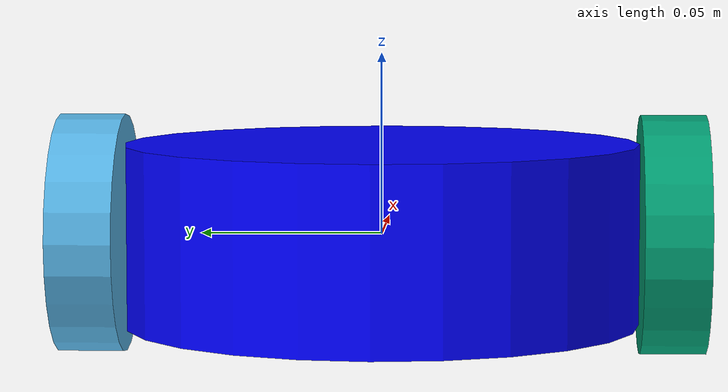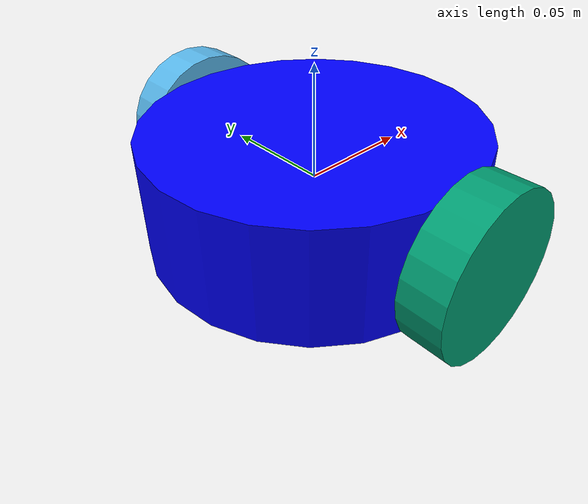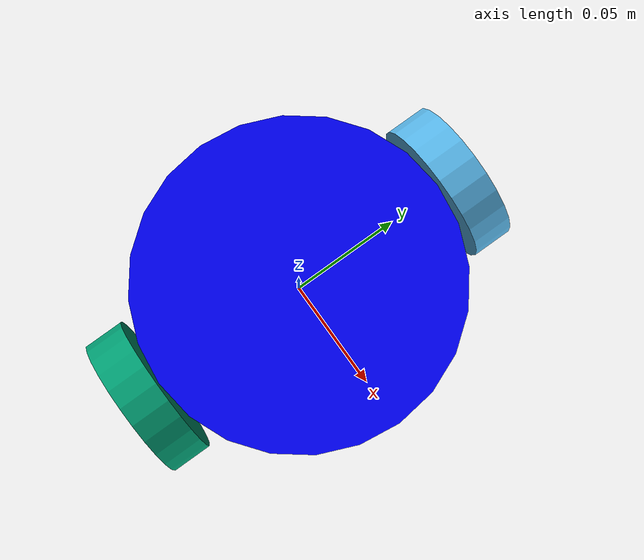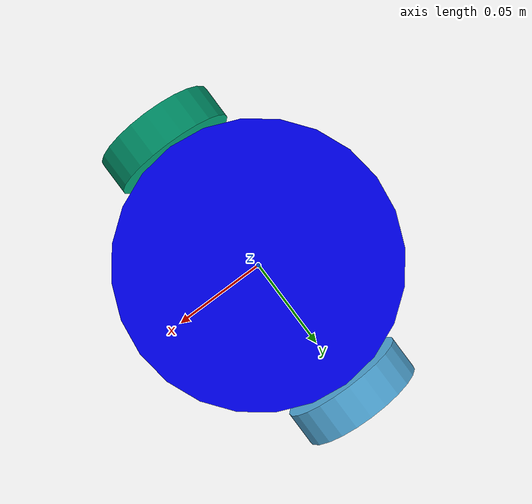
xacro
<?xml version="1.0"?>
<robot xmlns:xacro="http://www.ros.org/wiki/xacro" name="diff_robot">
<xacro:arg name="robot_name" default="robot_0"/>
<xacro:property name="ns" value="$(arg robot_name)"/>

  <link name="base_link">
    <visual>
      <geometry><cylinder radius="0.071" length="0.05"/></geometry>
      <material name="blue"><color rgba="0 0 1 1"/></material>
    </visual>
    <collision>
      <geometry><cylinder radius="0.071" length="0.05"/></geometry>
    </collision>
    <inertial>
      <mass value="1.0"/>
      <inertia ixx="0.005" ixy="0" ixz="0" iyy="0.005" iyz="0" izz="0.005"/>
    </inertial>
  </link>

  <link name="left_wheel">
    <visual><geometry><cylinder radius="0.033" length="0.018"/></geometry></visual>
    <collision><geometry><cylinder radius="0.033" length="0.018"/></geometry></collision>
    <inertial>
      <mass value="0.1"/>
      <inertia ixx="0.0001" ixy="0" ixz="0" iyy="0.0001" iyz="0" izz="0.0001"/>
    </inertial>
  </link>
  <link name="right_wheel">
    <visual><geometry><cylinder radius="0.033" length="0.018"/></geometry></visual>
    <collision><geometry><cylinder radius="0.033" length="0.018"/></geometry></collision>
    <inertial>
      <mass value="0.1"/>
      <inertia ixx="0.0001" ixy="0" ixz="0" iyy="0.0001" iyz="0" izz="0.0001"/>
    </inertial>
  </link>

  <joint name="left_wheel_joint" type="continuous">
    <parent link="base_link"/><child link="left_wheel"/>
    <origin xyz="0 0.08 0" rpy="-1.57 0 0"/><axis xyz="0 0 1"/>
  </joint>
  <joint name="right_wheel_joint" type="continuous">
    <parent link="base_link"/><child link="right_wheel"/>
    <origin xyz="0 -0.08 0" rpy="-1.57 0 0"/><axis xyz="0 0 1"/>
  </joint>

  <gazebo>
    <plugin filename="gz-sim-diff-drive-system" name="gz::sim::systems::DiffDrive">
      <left_joint>left_wheel_joint</left_joint>
      <right_joint>right_wheel_joint</right_joint>
      <wheel_separation>0.16</wheel_separation>
      <wheel_radius>0.033</wheel_radius>
      <odom_publish_frequency>50</odom_publish_frequency>

      <!-- 2. FORCE O TOPICO A USAR O NAMESPACE DO ROBÔ -->
      <topic>/${ns}/cmd_vel</topic>
      <odom_topic>/${ns}/odom</odom_topic>

      <!-- 3. AJUSTE OS FRAMES PARA REBATER O NAMESPACE (Evita TF duplicado) -->
      <frame_id>${ns}/odom</frame_id>
      <child_frame_id>${ns}/base_link</child_frame_id>
    </plugin>
  </gazebo>
</robot>
